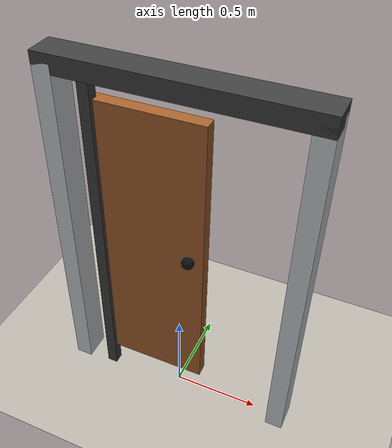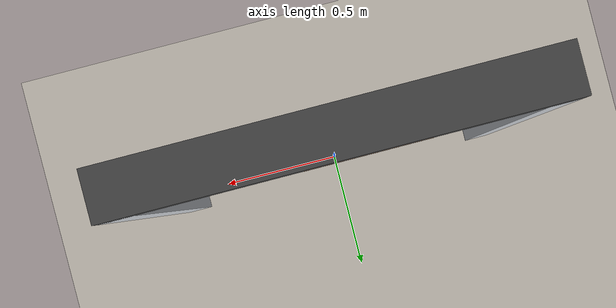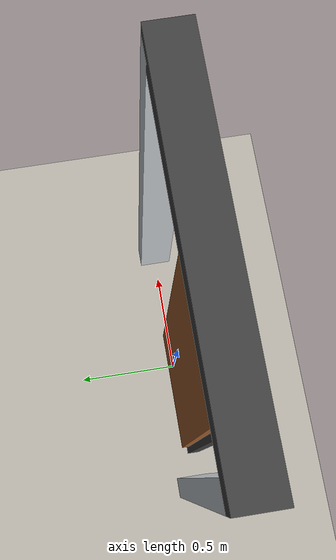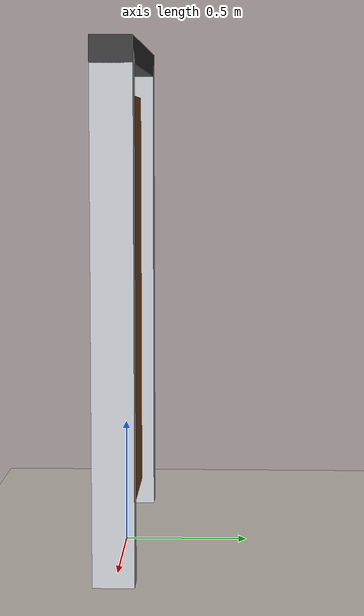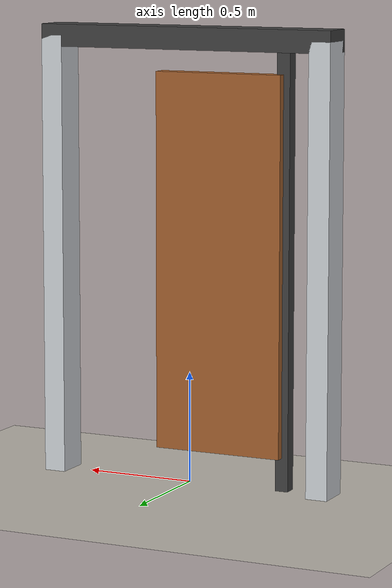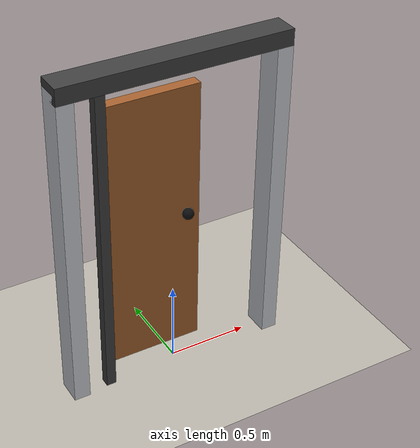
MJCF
<mujoco model="hinge_door_demo">
  <compiler angle="radian"/>
  <option timestep="0.002" gravity="0 0 -9.81"/>

  <visual>
    <global offwidth="800" offheight="600"/>
  </visual>

  <asset>
    <material name="floor_mat" rgba="0.72 0.70 0.66 1"/>
    <material name="wall_mat" rgba="0.82 0.84 0.86 1"/>
    <material name="door_mat" rgba="0.65 0.38 0.18 1"/>
    <material name="frame_mat" rgba="0.25 0.25 0.25 1"/>
  </asset>

  <worldbody>
    <light name="top_light" pos="0 -2 4" dir="0 1 -2"/>
    <camera name="overview" pos="2.4 -3.2 1.8" xyaxes="0.8 0.6 0 -0.28 0.37 0.88"/>

    <geom name="floor" type="plane" size="3 3 0.05" material="floor_mat"/>

    <geom name="left_wall" type="box" pos="-0.65 0 1.0" size="0.05 0.08 1.0" material="wall_mat"/>
    <geom name="right_wall" type="box" pos="0.65 0 1.0" size="0.05 0.08 1.0" material="wall_mat"/>
    <geom name="top_frame" type="box" pos="0 0 2.0" size="0.70 0.08 0.05" material="frame_mat"/>
    <geom name="hinge_post" type="box" pos="-0.45 -0.03 1.0" size="0.03 0.03 1.0" material="frame_mat" contype="0" conaffinity="0"/>

    <body name="door" pos="-0.45 0 1.0">
      <joint name="door_hinge" type="hinge" axis="0 0 1" range="0 1.57" damping="0.1"/>
      <geom name="door_panel" type="box" pos="0.3 0 0" size="0.30 0.035 0.85" mass="2" material="door_mat"/>
      <geom name="door_handle" type="sphere" pos="0.52 -0.05 0.05" size="0.035" mass="0.1" rgba="0.05 0.05 0.05 1"/>
    </body>
  </worldbody>

  <actuator>
    <position name="door_position_motor" joint="door_hinge" kp="120" ctrlrange="0 1.45" forcerange="-80 80"/>
  </actuator>
</mujoco>
